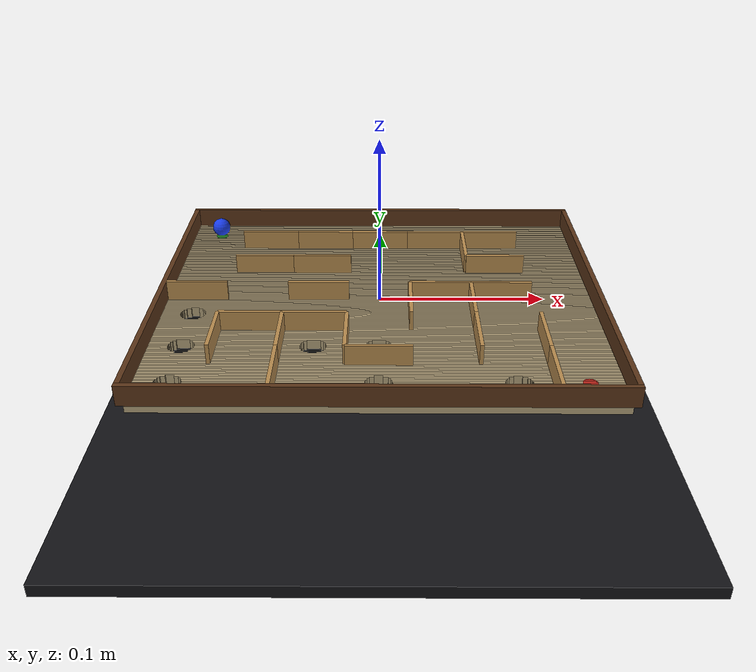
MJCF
<mujoco model="cyberrunner_custom_maze">
  <compiler angle="radian" inertiafromgeom="auto"/>
  <option timestep="0.001" gravity="0 0 -9.81" integrator="implicitfast" solver="Newton" iterations="12" tolerance="1e-9"/>
  <size nconmax="4000" njmax="12000"/>
  <visual>
    <global offwidth="900" offheight="800"/>
    <quality shadowsize="2048"/>
    <map znear="0.01" zfar="3"/>
  </visual>
  <default>
    <default class="floor">
      <geom friction="0.30 0.015 0.002" solref="0.004 1" solimp="0.95 0.99 0.001" density="650"/>
    </default>
    <default class="wall">
      <geom friction="0.35 0.02 0.003" solref="0.003 1" solimp="0.95 0.99 0.001" density="700"/>
    </default>
  </default>
  <worldbody>
    <light name="key" pos="0 -0.15 0.55" dir="0 0 -1" diffuse="0.9 0.9 0.9"/>
    <light name="fill" pos="-0.25 0.2 0.35" dir="0.4 -0.3 -1" diffuse="0.45 0.45 0.45"/>
    <camera name="top" pos="0 0 0.43" quat="1 0 0 0" mode="fixed" fovy="37"/>
    <geom name="catch_tray" type="box" pos="0 0 -0.085" size="0.18 0.16 0.004" rgba="0.08 0.08 0.09 1" friction="0.5 0.02 0.003"/>
    <body name="tilt_x_frame" pos="0 0 0">
      <inertial pos="0 0 0" mass="0.02" diaginertia="0.0001 0.0001 0.0001"/>
      <joint name="tilt_x" type="hinge" axis="1 0 0" range="-0.174532925 0.174532925" damping="0.8" armature="0.01"/>
      <body name="board" pos="0 0 0">
        <joint name="tilt_y" type="hinge" axis="0 1 0" range="-0.174532925 0.174532925" damping="0.8" armature="0.01"/>
        <geom name="floor_0" type="box" pos="0 -0.113751634 -0.003" size="0.1295 0.000748366013 0.003" rgba="0.70 0.63 0.48 1" class="floor"/><geom name="floor_1" type="box" pos="0 -0.112254902 -0.003" size="0.1295 0.000748366013 0.003" rgba="0.70 0.63 0.48 1" class="floor"/><geom name="floor_2" type="box" pos="0 -0.11075817 -0.003" size="0.1295 0.000748366013 0.003" rgba="0.70 0.63 0.48 1" class="floor"/><geom name="floor_3" type="box" pos="0 -0.109261438 -0.003" size="0.1295 0.000748366013 0.003" rgba="0.70 0.63 0.48 1" class="floor"/><geom name="floor_4" type="box" pos="0 -0.107764706 -0.003" size="0.1295 0.000748366013 0.003" rgba="0.70 0.63 0.48 1" class="floor"/><geom name="floor_5" type="box" pos="0 -0.106267974 -0.003" size="0.1295 0.000748366013 0.003" rgba="0.70 0.63 0.48 1" class="floor"/><geom name="floor_6" type="box" pos="0 -0.104771242 -0.003" size="0.1295 0.000748366013 0.003" rgba="0.70 0.63 0.48 1" class="floor"/><geom name="floor_7" type="box" pos="0 -0.10327451 -0.003" size="0.1295 0.000748366013 0.003" rgba="0.70 0.63 0.48 1" class="floor"/><geom name="floor_8" type="box" pos="-0.122236597 -0.101777778 -0.003" size="0.00726340332 0.000748366013 0.003" rgba="0.70 0.63 0.48 1" class="floor"/><geom name="floor_9" type="box" pos="-0.0555 -0.101777778 -0.003" size="0.0515268066 0.000748366013 0.003" rgba="0.70 0.63 0.48 1" class="floor"/><geom name="floor_10" type="box" pos="0.037 -0.101777778 -0.003" size="0.0330268066 0.000748366013 0.003" rgba="0.70 0.63 0.48 1" class="floor"/><geom name="floor_11" type="box" pos="0.103736597 -0.101777778 -0.003" size="0.0257634033 0.000748366013 0.003" rgba="0.70 0.63 0.48 1" class="floor"/><geom name="floor_12" type="box" pos="-0.123104287 -0.100281046 -0.003" size="0.00639571304 0.000748366013 0.003" rgba="0.70 0.63 0.48 1" class="floor"/><geom name="floor_13" type="box" pos="-0.0555 -0.100281046 -0.003" size="0.0497914261 0.000748366013 0.003" rgba="0.70 0.63 0.48 1" class="floor"/><geom name="floor_14" type="box" pos="0.037 -0.100281046 -0.003" size="0.0312914261 0.000748366013 0.003" rgba="0.70 0.63 0.48 1" class="floor"/><geom name="floor_15" type="box" pos="0.104604287 -0.100281046 -0.003" size="0.024895713 0.000748366013 0.003" rgba="0.70 0.63 0.48 1" class="floor"/><geom name="floor_16" type="box" pos="-0.123600707 -0.0987843137 -0.003" size="0.00589929286 0.000748366013 0.003" rgba="0.70 0.63 0.48 1" class="floor"/><geom name="floor_17" type="box" pos="-0.0555 -0.0987843137 -0.003" size="0.0487985857 0.000748366013 0.003" rgba="0.70 0.63 0.48 1" class="floor"/><geom name="floor_18" type="box" pos="0.037 -0.0987843137 -0.003" size="0.0302985857 0.000748366013 0.003" rgba="0.70 0.63 0.48 1" class="floor"/><geom name="floor_19" type="box" pos="0.105100707 -0.0987843137 -0.003" size="0.0243992929 0.000748366013 0.003" rgba="0.70 0.63 0.48 1" class="floor"/><geom name="floor_20" type="box" pos="-0.123881449 -0.0972875817 -0.003" size="0.00561855136 0.000748366013 0.003" rgba="0.70 0.63 0.48 1" class="floor"/><geom name="floor_21" type="box" pos="-0.0555 -0.0972875817 -0.003" size="0.0482371027 0.000748366013 0.003" rgba="0.70 0.63 0.48 1" class="floor"/><geom name="floor_22" type="box" pos="0.037 -0.0972875817 -0.003" size="0.0297371027 0.000748366013 0.003" rgba="0.70 0.63 0.48 1" class="floor"/><geom name="floor_23" type="box" pos="0.105381449 -0.0972875817 -0.003" size="0.0241185514 0.000748366013 0.003" rgba="0.70 0.63 0.48 1" class="floor"/><geom name="floor_24" type="box" pos="-0.12399533 -0.0957908497 -0.003" size="0.00550467001 0.000748366013 0.003" rgba="0.70 0.63 0.48 1" class="floor"/><geom name="floor_25" type="box" pos="-0.0555 -0.0957908497 -0.003" size="0.04800934 0.000748366013 0.003" rgba="0.70 0.63 0.48 1" class="floor"/><geom name="floor_26" type="box" pos="0.037 -0.0957908497 -0.003" size="0.02950934 0.000748366013 0.003" rgba="0.70 0.63 0.48 1" class="floor"/><geom name="floor_27" type="box" pos="0.10549533 -0.0957908497 -0.003" size="0.02400467 0.000748366013 0.003" rgba="0.70 0.63 0.48 1" class="floor"/><geom name="floor_28" type="box" pos="-0.123957758 -0.0942941176 -0.003" size="0.00554224179 0.000748366013 0.003" rgba="0.70 0.63 0.48 1" class="floor"/><geom name="floor_29" type="box" pos="-0.0555 -0.0942941176 -0.003" size="0.0480844836 0.000748366013 0.003" rgba="0.70 0.63 0.48 1" class="floor"/><geom name="floor_30" type="box" pos="0.037 -0.0942941176 -0.003" size="0.0295844836 0.000748366013 0.003" rgba="0.70 0.63 0.48 1" class="floor"/><geom name="floor_31" type="box" pos="0.105457758 -0.0942941176 -0.003" size="0.0240422418 0.000748366013 0.003" rgba="0.70 0.63 0.48 1" class="floor"/><geom name="floor_32" type="box" pos="-0.123763878 -0.0927973856 -0.003" size="0.00573612156 0.000748366013 0.003" rgba="0.70 0.63 0.48 1" class="floor"/><geom name="floor_33" type="box" pos="-0.0555 -0.0927973856 -0.003" size="0.0484722431 0.000748366013 0.003" rgba="0.70 0.63 0.48 1" class="floor"/><geom name="floor_34" type="box" pos="0.037 -0.0927973856 -0.003" size="0.0299722431 0.000748366013 0.003" rgba="0.70 0.63 0.48 1" class="floor"/><geom name="floor_35" type="box" pos="0.105263878 -0.0927973856 -0.003" size="0.0242361216 0.000748366013 0.003" rgba="0.70 0.63 0.48 1" class="floor"/><geom name="floor_36" type="box" pos="-0.123384822 -0.0913006536 -0.003" size="0.00611517798 0.000748366013 0.003" rgba="0.70 0.63 0.48 1" class="floor"/><geom name="floor_37" type="box" pos="-0.0555 -0.0913006536 -0.003" size="0.049230356 0.000748366013 0.003" rgba="0.70 0.63 0.48 1" class="floor"/><geom name="floor_38" type="box" pos="0.037 -0.0913006536 -0.003" size="0.030730356 0.000748366013 0.003" rgba="0.70 0.63 0.48 1" class="floor"/><geom name="floor_39" type="box" pos="0.104884822 -0.0913006536 -0.003" size="0.024615178 0.000748366013 0.003" rgba="0.70 0.63 0.48 1" class="floor"/><geom name="floor_40" type="box" pos="-0.122737322 -0.0898039216 -0.003" size="0.00676267752 0.000748366013 0.003" rgba="0.70 0.63 0.48 1" class="floor"/><geom name="floor_41" type="box" pos="-0.0555 -0.0898039216 -0.003" size="0.050525355 0.000748366013 0.003" rgba="0.70 0.63 0.48 1" class="floor"/><geom name="floor_42" type="box" pos="0.037 -0.0898039216 -0.003" size="0.032025355 0.000748366013 0.003" rgba="0.70 0.63 0.48 1" class="floor"/><geom name="floor_43" type="box" pos="0.104237322 -0.0898039216 -0.003" size="0.0252626775 0.000748366013 0.003" rgba="0.70 0.63 0.48 1" class="floor"/><geom name="floor_44" type="box" pos="-0.121444292 -0.0883071895 -0.003" size="0.00805570784 0.000748366013 0.003" rgba="0.70 0.63 0.48 1" class="floor"/><geom name="floor_45" type="box" pos="-0.0555 -0.0883071895 -0.003" size="0.0531114157 0.000748366013 0.003" rgba="0.70 0.63 0.48 1" class="floor"/><geom name="floor_46" type="box" pos="0.037 -0.0883071895 -0.003" size="0.0346114157 0.000748366013 0.003" rgba="0.70 0.63 0.48 1" class="floor"/><geom name="floor_47" type="box" pos="0.102944292 -0.0883071895 -0.003" size="0.0265557078 0.000748366013 0.003" rgba="0.70 0.63 0.48 1" class="floor"/><geom name="floor_48" type="box" pos="0 -0.0868104575 -0.003" size="0.1295 0.000748366013 0.003" rgba="0.70 0.63 0.48 1" class="floor"/><geom name="floor_49" type="box" pos="0 -0.0853137255 -0.003" size="0.1295 0.000748366013 0.003" rgba="0.70 0.63 0.48 1" class="floor"/><geom name="floor_50" type="box" pos="0 -0.0838169935 -0.003" size="0.1295 0.000748366013 0.003" rgba="0.70 0.63 0.48 1" class="floor"/><geom name="floor_51" type="box" pos="0 -0.0823202614 -0.003" size="0.1295 0.000748366013 0.003" rgba="0.70 0.63 0.48 1" class="floor"/><geom name="floor_52" type="box" pos="0 -0.0808235294 -0.003" size="0.1295 0.000748366013 0.003" rgba="0.70 0.63 0.48 1" class="floor"/><geom name="floor_53" type="box" pos="0 -0.0793267974 -0.003" size="0.1295 0.000748366013 0.003" rgba="0.70 0.63 0.48 1" class="floor"/><geom name="floor_54" type="box" pos="0 -0.0778300654 -0.003" size="0.1295 0.000748366013 0.003" rgba="0.70 0.63 0.48 1" class="floor"/><geom name="floor_55" type="box" pos="0 -0.0763333333 -0.003" size="0.1295 0.000748366013 0.003" rgba="0.70 0.63 0.48 1" class="floor"/><geom name="floor_56" type="box" pos="0 -0.0748366013 -0.003" size="0.1295 0.000748366013 0.003" rgba="0.70 0.63 0.48 1" class="floor"/><geom name="floor_57" type="box" pos="0 -0.0733398693 -0.003" size="0.1295 0.000748366013 0.003" rgba="0.70 0.63 0.48 1" class="floor"/><geom name="floor_58" type="box" pos="0 -0.0718431373 -0.003" size="0.1295 0.000748366013 0.003" rgba="0.70 0.63 0.48 1" class="floor"/><geom name="floor_59" type="box" pos="0 -0.0703464052 -0.003" size="0.1295 0.000748366013 0.003" rgba="0.70 0.63 0.48 1" class="floor"/><geom name="floor_60" type="box" pos="0 -0.0688496732 -0.003" size="0.1295 0.000748366013 0.003" rgba="0.70 0.63 0.48 1" class="floor"/><geom name="floor_61" type="box" pos="0 -0.0673529412 -0.003" size="0.1295 0.000748366013 0.003" rgba="0.70 0.63 0.48 1" class="floor"/><geom name="floor_62" type="box" pos="0 -0.0658562092 -0.003" size="0.1295 0.000748366013 0.003" rgba="0.70 0.63 0.48 1" class="floor"/><geom name="floor_63" type="box" pos="-0.121444292 -0.0643594771 -0.003" size="0.00805570784 0.000748366013 0.003" rgba="0.70 0.63 0.48 1" class="floor"/><geom name="floor_64" type="box" pos="-0.074 -0.0643594771 -0.003" size="0.0346114157 0.000748366013 0.003" rgba="0.70 0.63 0.48 1" class="floor"/><geom name="floor_65" type="box" pos="-0.0185 -0.0643594771 -0.003" size="0.0161114157 0.000748366013 0.003" rgba="0.70 0.63 0.48 1" class="floor"/><geom name="floor_66" type="box" pos="0.0659442922 -0.0643594771 -0.003" size="0.0635557078 0.000748366013 0.003" rgba="0.70 0.63 0.48 1" class="floor"/><geom name="floor_67" type="box" pos="-0.122737322 -0.0628627451 -0.003" size="0.00676267752 0.000748366013 0.003" rgba="0.70 0.63 0.48 1" class="floor"/><geom name="floor_68" type="box" pos="-0.074 -0.0628627451 -0.003" size="0.032025355 0.000748366013 0.003" rgba="0.70 0.63 0.48 1" class="floor"/><geom name="floor_69" type="box" pos="-0.0185 -0.0628627451 -0.003" size="0.013525355 0.000748366013 0.003" rgba="0.70 0.63 0.48 1" class="floor"/><geom name="floor_70" type="box" pos="0.0672373225 -0.0628627451 -0.003" size="0.0622626775 0.000748366013 0.003" rgba="0.70 0.63 0.48 1" class="floor"/><geom name="floor_71" type="box" pos="-0.123384822 -0.0613660131 -0.003" size="0.00611517798 0.000748366013 0.003" rgba="0.70 0.63 0.48 1" class="floor"/><geom name="floor_72" type="box" pos="-0.074 -0.0613660131 -0.003" size="0.030730356 0.000748366013 0.003" rgba="0.70 0.63 0.48 1" class="floor"/><geom name="floor_73" type="box" pos="-0.0185 -0.0613660131 -0.003" size="0.012230356 0.000748366013 0.003" rgba="0.70 0.63 0.48 1" class="floor"/><geom name="floor_74" type="box" pos="0.067884822 -0.0613660131 -0.003" size="0.061615178 0.000748366013 0.003" rgba="0.70 0.63 0.48 1" class="floor"/><geom name="floor_75" type="box" pos="-0.123763878 -0.059869281 -0.003" size="0.00573612156 0.000748366013 0.003" rgba="0.70 0.63 0.48 1" class="floor"/><geom name="floor_76" type="box" pos="-0.074 -0.059869281 -0.003" size="0.0299722431 0.000748366013 0.003" rgba="0.70 0.63 0.48 1" class="floor"/><geom name="floor_77" type="box" pos="-0.0185 -0.059869281 -0.003" size="0.0114722431 0.000748366013 0.003" rgba="0.70 0.63 0.48 1" class="floor"/><geom name="floor_78" type="box" pos="0.0682638784 -0.059869281 -0.003" size="0.0612361216 0.000748366013 0.003" rgba="0.70 0.63 0.48 1" class="floor"/><geom name="floor_79" type="box" pos="-0.123957758 -0.058372549 -0.003" size="0.00554224179 0.000748366013 0.003" rgba="0.70 0.63 0.48 1" class="floor"/><geom name="floor_80" type="box" pos="-0.074 -0.058372549 -0.003" size="0.0295844836 0.000748366013 0.003" rgba="0.70 0.63 0.48 1" class="floor"/><geom name="floor_81" type="box" pos="-0.0185 -0.058372549 -0.003" size="0.0110844836 0.000748366013 0.003" rgba="0.70 0.63 0.48 1" class="floor"/><geom name="floor_82" type="box" pos="0.0684577582 -0.058372549 -0.003" size="0.0610422418 0.000748366013 0.003" rgba="0.70 0.63 0.48 1" class="floor"/><geom name="floor_83" type="box" pos="-0.12399533 -0.056875817 -0.003" size="0.00550467001 0.000748366013 0.003" rgba="0.70 0.63 0.48 1" class="floor"/><geom name="floor_84" type="box" pos="-0.074 -0.056875817 -0.003" size="0.02950934 0.000748366013 0.003" rgba="0.70 0.63 0.48 1" class="floor"/><geom name="floor_85" type="box" pos="-0.0185 -0.056875817 -0.003" size="0.01100934 0.000748366013 0.003" rgba="0.70 0.63 0.48 1" class="floor"/><geom name="floor_86" type="box" pos="0.06849533 -0.056875817 -0.003" size="0.06100467 0.000748366013 0.003" rgba="0.70 0.63 0.48 1" class="floor"/><geom name="floor_87" type="box" pos="-0.123881449 -0.055379085 -0.003" size="0.00561855136 0.000748366013 0.003" rgba="0.70 0.63 0.48 1" class="floor"/><geom name="floor_88" type="box" pos="-0.074 -0.055379085 -0.003" size="0.0297371027 0.000748366013 0.003" rgba="0.70 0.63 0.48 1" class="floor"/><geom name="floor_89" type="box" pos="-0.0185 -0.055379085 -0.003" size="0.0112371027 0.000748366013 0.003" rgba="0.70 0.63 0.48 1" class="floor"/><geom name="floor_90" type="box" pos="0.0683814486 -0.055379085 -0.003" size="0.0611185514 0.000748366013 0.003" rgba="0.70 0.63 0.48 1" class="floor"/><geom name="floor_91" type="box" pos="-0.123600707 -0.0538823529 -0.003" size="0.00589929286 0.000748366013 0.003" rgba="0.70 0.63 0.48 1" class="floor"/><geom name="floor_92" type="box" pos="-0.074 -0.0538823529 -0.003" size="0.0302985857 0.000748366013 0.003" rgba="0.70 0.63 0.48 1" class="floor"/><geom name="floor_93" type="box" pos="-0.0185 -0.0538823529 -0.003" size="0.0117985857 0.000748366013 0.003" rgba="0.70 0.63 0.48 1" class="floor"/><geom name="floor_94" type="box" pos="0.0681007071 -0.0538823529 -0.003" size="0.0613992929 0.000748366013 0.003" rgba="0.70 0.63 0.48 1" class="floor"/><geom name="floor_95" type="box" pos="-0.123104287 -0.0523856209 -0.003" size="0.00639571304 0.000748366013 0.003" rgba="0.70 0.63 0.48 1" class="floor"/><geom name="floor_96" type="box" pos="-0.074 -0.0523856209 -0.003" size="0.0312914261 0.000748366013 0.003" rgba="0.70 0.63 0.48 1" class="floor"/><geom name="floor_97" type="box" pos="-0.0185 -0.0523856209 -0.003" size="0.0127914261 0.000748366013 0.003" rgba="0.70 0.63 0.48 1" class="floor"/><geom name="floor_98" type="box" pos="0.067604287 -0.0523856209 -0.003" size="0.061895713 0.000748366013 0.003" rgba="0.70 0.63 0.48 1" class="floor"/><geom name="floor_99" type="box" pos="-0.122236597 -0.0508888889 -0.003" size="0.00726340332 0.000748366013 0.003" rgba="0.70 0.63 0.48 1" class="floor"/><geom name="floor_100" type="box" pos="-0.074 -0.0508888889 -0.003" size="0.0330268066 0.000748366013 0.003" rgba="0.70 0.63 0.48 1" class="floor"/><geom name="floor_101" type="box" pos="-0.0185 -0.0508888889 -0.003" size="0.0145268066 0.000748366013 0.003" rgba="0.70 0.63 0.48 1" class="floor"/><geom name="floor_102" type="box" pos="0.0667365967 -0.0508888889 -0.003" size="0.0627634033 0.000748366013 0.003" rgba="0.70 0.63 0.48 1" class="floor"/><geom name="floor_103" type="box" pos="0 -0.0493921569 -0.003" size="0.1295 0.000748366013 0.003" rgba="0.70 0.63 0.48 1" class="floor"/><geom name="floor_104" type="box" pos="0 -0.0478954248 -0.003" size="0.1295 0.000748366013 0.003" rgba="0.70 0.63 0.48 1" class="floor"/><geom name="floor_105" type="box" pos="0 -0.0463986928 -0.003" size="0.1295 0.000748366013 0.003" rgba="0.70 0.63 0.48 1" class="floor"/><geom name="floor_106" type="box" pos="0 -0.0449019608 -0.003" size="0.1295 0.000748366013 0.003" rgba="0.70 0.63 0.48 1" class="floor"/><geom name="floor_107" type="box" pos="0 -0.0434052288 -0.003" size="0.1295 0.000748366013 0.003" rgba="0.70 0.63 0.48 1" class="floor"/><geom name="floor_108" type="box" pos="0 -0.0419084967 -0.003" size="0.1295 0.000748366013 0.003" rgba="0.70 0.63 0.48 1" class="floor"/><geom name="floor_109" type="box" pos="0 -0.0404117647 -0.003" size="0.1295 0.000748366013 0.003" rgba="0.70 0.63 0.48 1" class="floor"/><geom name="floor_110" type="box" pos="0 -0.0389150327 -0.003" size="0.1295 0.000748366013 0.003" rgba="0.70 0.63 0.48 1" class="floor"/><geom name="floor_111" type="box" pos="0 -0.0374183007 -0.003" size="0.1295 0.000748366013 0.003" rgba="0.70 0.63 0.48 1" class="floor"/><geom name="floor_112" type="box" pos="0 -0.0359215686 -0.003" size="0.1295 0.000748366013 0.003" rgba="0.70 0.63 0.48 1" class="floor"/><geom name="floor_113" type="box" pos="0 -0.0344248366 -0.003" size="0.1295 0.000748366013 0.003" rgba="0.70 0.63 0.48 1" class="floor"/><geom name="floor_114" type="box" pos="0 -0.0329281046 -0.003" size="0.1295 0.000748366013 0.003" rgba="0.70 0.63 0.48 1" class="floor"/><geom name="floor_115" type="box" pos="0 -0.0314313725 -0.003" size="0.1295 0.000748366013 0.003" rgba="0.70 0.63 0.48 1" class="floor"/><geom name="floor_116" type="box" pos="0 -0.0299346405 -0.003" size="0.1295 0.000748366013 0.003" rgba="0.70 0.63 0.48 1" class="floor"/><geom name="floor_117" type="box" pos="0 -0.0284379085 -0.003" size="0.1295 0.000748366013 0.003" rgba="0.70 0.63 0.48 1" class="floor"/><geom name="floor_118" type="box" pos="0 -0.0269411765 -0.003" size="0.1295 0.000748366013 0.003" rgba="0.70 0.63 0.48 1" class="floor"/><geom name="floor_119" type="box" pos="-0.122236597 -0.0254444444 -0.003" size="0.00726340332 0.000748366013 0.003" rgba="0.70 0.63 0.48 1" class="floor"/><geom name="floor_120" type="box" pos="0.0112365967 -0.0254444444 -0.003" size="0.118263403 0.000748366013 0.003" rgba="0.70 0.63 0.48 1" class="floor"/><geom name="floor_121" type="box" pos="-0.123104287 -0.0239477124 -0.003" size="0.00639571304 0.000748366013 0.003" rgba="0.70 0.63 0.48 1" class="floor"/><geom name="floor_122" type="box" pos="0.012104287 -0.0239477124 -0.003" size="0.117395713 0.000748366013 0.003" rgba="0.70 0.63 0.48 1" class="floor"/><geom name="floor_123" type="box" pos="-0.123600707 -0.0224509804 -0.003" size="0.00589929286 0.000748366013 0.003" rgba="0.70 0.63 0.48 1" class="floor"/><geom name="floor_124" type="box" pos="0.0126007071 -0.0224509804 -0.003" size="0.116899293 0.000748366013 0.003" rgba="0.70 0.63 0.48 1" class="floor"/><geom name="floor_125" type="box" pos="-0.123881449 -0.0209542484 -0.003" size="0.00561855136 0.000748366013 0.003" rgba="0.70 0.63 0.48 1" class="floor"/><geom name="floor_126" type="box" pos="0.0128814486 -0.0209542484 -0.003" size="0.116618551 0.000748366013 0.003" rgba="0.70 0.63 0.48 1" class="floor"/><geom name="floor_127" type="box" pos="-0.12399533 -0.0194575163 -0.003" size="0.00550467001 0.000748366013 0.003" rgba="0.70 0.63 0.48 1" class="floor"/><geom name="floor_128" type="box" pos="0.01299533 -0.0194575163 -0.003" size="0.11650467 0.000748366013 0.003" rgba="0.70 0.63 0.48 1" class="floor"/><geom name="floor_129" type="box" pos="-0.123957758 -0.0179607843 -0.003" size="0.00554224179 0.000748366013 0.003" rgba="0.70 0.63 0.48 1" class="floor"/><geom name="floor_130" type="box" pos="0.0129577582 -0.0179607843 -0.003" size="0.116542242 0.000748366013 0.003" rgba="0.70 0.63 0.48 1" class="floor"/><geom name="floor_131" type="box" pos="-0.123763878 -0.0164640523 -0.003" size="0.00573612156 0.000748366013 0.003" rgba="0.70 0.63 0.48 1" class="floor"/><geom name="floor_132" type="box" pos="0.0127638784 -0.0164640523 -0.003" size="0.116736122 0.000748366013 0.003" rgba="0.70 0.63 0.48 1" class="floor"/><geom name="floor_133" type="box" pos="-0.123384822 -0.0149673203 -0.003" size="0.00611517798 0.000748366013 0.003" rgba="0.70 0.63 0.48 1" class="floor"/><geom name="floor_134" type="box" pos="0.012384822 -0.0149673203 -0.003" size="0.117115178 0.000748366013 0.003" rgba="0.70 0.63 0.48 1" class="floor"/><geom name="floor_135" type="box" pos="-0.122737322 -0.0134705882 -0.003" size="0.00676267752 0.000748366013 0.003" rgba="0.70 0.63 0.48 1" class="floor"/><geom name="floor_136" type="box" pos="0.0117373225 -0.0134705882 -0.003" size="0.117762678 0.000748366013 0.003" rgba="0.70 0.63 0.48 1" class="floor"/><geom name="floor_137" type="box" pos="-0.121444292 -0.0119738562 -0.003" size="0.00805570784 0.000748366013 0.003" rgba="0.70 0.63 0.48 1" class="floor"/><geom name="floor_138" type="box" pos="0.0104442922 -0.0119738562 -0.003" size="0.119055708 0.000748366013 0.003" rgba="0.70 0.63 0.48 1" class="floor"/><geom name="floor_139" type="box" pos="0 -0.0104771242 -0.003" size="0.1295 0.000748366013 0.003" rgba="0.70 0.63 0.48 1" class="floor"/><geom name="floor_140" type="box" pos="0 -0.00898039216 -0.003" size="0.1295 0.000748366013 0.003" rgba="0.70 0.63 0.48 1" class="floor"/><geom name="floor_141" type="box" pos="0 -0.00748366013 -0.003" size="0.1295 0.000748366013 0.003" rgba="0.70 0.63 0.48 1" class="floor"/><geom name="floor_142" type="box" pos="0 -0.0059869281 -0.003" size="0.1295 0.000748366013 0.003" rgba="0.70 0.63 0.48 1" class="floor"/><geom name="floor_143" type="box" pos="0 -0.00449019608 -0.003" size="0.1295 0.000748366013 0.003" rgba="0.70 0.63 0.48 1" class="floor"/><geom name="floor_144" type="box" pos="0 -0.00299346405 -0.003" size="0.1295 0.000748366013 0.003" rgba="0.70 0.63 0.48 1" class="floor"/><geom name="floor_145" type="box" pos="0 -0.00149673203 -0.003" size="0.1295 0.000748366013 0.003" rgba="0.70 0.63 0.48 1" class="floor"/><geom name="floor_146" type="box" pos="0 -1.38777878e-17 -0.003" size="0.1295 0.000748366013 0.003" rgba="0.70 0.63 0.48 1" class="floor"/><geom name="floor_147" type="box" pos="0 0.00149673203 -0.003" size="0.1295 0.000748366013 0.003" rgba="0.70 0.63 0.48 1" class="floor"/><geom name="floor_148" type="box" pos="0 0.00299346405 -0.003" size="0.1295 0.000748366013 0.003" rgba="0.70 0.63 0.48 1" class="floor"/><geom name="floor_149" type="box" pos="0 0.00449019608 -0.003" size="0.1295 0.000748366013 0.003" rgba="0.70 0.63 0.48 1" class="floor"/><geom name="floor_150" type="box" pos="0 0.0059869281 -0.003" size="0.1295 0.000748366013 0.003" rgba="0.70 0.63 0.48 1" class="floor"/><geom name="floor_151" type="box" pos="0 0.00748366013 -0.003" size="0.1295 0.000748366013 0.003" rgba="0.70 0.63 0.48 1" class="floor"/><geom name="floor_152" type="box" pos="0 0.00898039216 -0.003" size="0.1295 0.000748366013 0.003" rgba="0.70 0.63 0.48 1" class="floor"/><geom name="floor_153" type="box" pos="0 0.0104771242 -0.003" size="0.1295 0.000748366013 0.003" rgba="0.70 0.63 0.48 1" class="floor"/><geom name="floor_154" type="box" pos="-0.0289442922 0.0119738562 -0.003" size="0.100555708 0.000748366013 0.003" rgba="0.70 0.63 0.48 1" class="floor"/><geom name="floor_155" type="box" pos="0.102944292 0.0119738562 -0.003" size="0.0265557078 0.000748366013 0.003" rgba="0.70 0.63 0.48 1" class="floor"/><geom name="floor_156" type="box" pos="-0.0302373225 0.0134705882 -0.003" size="0.0992626775 0.000748366013 0.003" rgba="0.70 0.63 0.48 1" class="floor"/><geom name="floor_157" type="box" pos="0.104237322 0.0134705882 -0.003" size="0.0252626775 0.000748366013 0.003" rgba="0.70 0.63 0.48 1" class="floor"/><geom name="floor_158" type="box" pos="-0.030884822 0.0149673203 -0.003" size="0.098615178 0.000748366013 0.003" rgba="0.70 0.63 0.48 1" class="floor"/><geom name="floor_159" type="box" pos="0.104884822 0.0149673203 -0.003" size="0.024615178 0.000748366013 0.003" rgba="0.70 0.63 0.48 1" class="floor"/><geom name="floor_160" type="box" pos="-0.0312638784 0.0164640523 -0.003" size="0.0982361216 0.000748366013 0.003" rgba="0.70 0.63 0.48 1" class="floor"/><geom name="floor_161" type="box" pos="0.105263878 0.0164640523 -0.003" size="0.0242361216 0.000748366013 0.003" rgba="0.70 0.63 0.48 1" class="floor"/><geom name="floor_162" type="box" pos="-0.0314577582 0.0179607843 -0.003" size="0.0980422418 0.000748366013 0.003" rgba="0.70 0.63 0.48 1" class="floor"/><geom name="floor_163" type="box" pos="0.105457758 0.0179607843 -0.003" size="0.0240422418 0.000748366013 0.003" rgba="0.70 0.63 0.48 1" class="floor"/><geom name="floor_164" type="box" pos="-0.03149533 0.0194575163 -0.003" size="0.09800467 0.000748366013 0.003" rgba="0.70 0.63 0.48 1" class="floor"/><geom name="floor_165" type="box" pos="0.10549533 0.0194575163 -0.003" size="0.02400467 0.000748366013 0.003" rgba="0.70 0.63 0.48 1" class="floor"/><geom name="floor_166" type="box" pos="-0.0313814486 0.0209542484 -0.003" size="0.0981185514 0.000748366013 0.003" rgba="0.70 0.63 0.48 1" class="floor"/><geom name="floor_167" type="box" pos="0.105381449 0.0209542484 -0.003" size="0.0241185514 0.000748366013 0.003" rgba="0.70 0.63 0.48 1" class="floor"/><geom name="floor_168" type="box" pos="-0.0311007071 0.0224509804 -0.003" size="0.0983992929 0.000748366013 0.003" rgba="0.70 0.63 0.48 1" class="floor"/><geom name="floor_169" type="box" pos="0.105100707 0.0224509804 -0.003" size="0.0243992929 0.000748366013 0.003" rgba="0.70 0.63 0.48 1" class="floor"/><geom name="floor_170" type="box" pos="-0.030604287 0.0239477124 -0.003" size="0.098895713 0.000748366013 0.003" rgba="0.70 0.63 0.48 1" class="floor"/><geom name="floor_171" type="box" pos="0.104604287 0.0239477124 -0.003" size="0.024895713 0.000748366013 0.003" rgba="0.70 0.63 0.48 1" class="floor"/><geom name="floor_172" type="box" pos="-0.0297365967 0.0254444444 -0.003" size="0.0997634033 0.000748366013 0.003" rgba="0.70 0.63 0.48 1" class="floor"/><geom name="floor_173" type="box" pos="0.103736597 0.0254444444 -0.003" size="0.0257634033 0.000748366013 0.003" rgba="0.70 0.63 0.48 1" class="floor"/><geom name="floor_174" type="box" pos="0 0.0269411765 -0.003" size="0.1295 0.000748366013 0.003" rgba="0.70 0.63 0.48 1" class="floor"/><geom name="floor_175" type="box" pos="0 0.0284379085 -0.003" size="0.1295 0.000748366013 0.003" rgba="0.70 0.63 0.48 1" class="floor"/><geom name="floor_176" type="box" pos="0 0.0299346405 -0.003" size="0.1295 0.000748366013 0.003" rgba="0.70 0.63 0.48 1" class="floor"/><geom name="floor_177" type="box" pos="0 0.0314313725 -0.003" size="0.1295 0.000748366013 0.003" rgba="0.70 0.63 0.48 1" class="floor"/><geom name="floor_178" type="box" pos="0 0.0329281046 -0.003" size="0.1295 0.000748366013 0.003" rgba="0.70 0.63 0.48 1" class="floor"/><geom name="floor_179" type="box" pos="0 0.0344248366 -0.003" size="0.1295 0.000748366013 0.003" rgba="0.70 0.63 0.48 1" class="floor"/><geom name="floor_180" type="box" pos="0 0.0359215686 -0.003" size="0.1295 0.000748366013 0.003" rgba="0.70 0.63 0.48 1" class="floor"/><geom name="floor_181" type="box" pos="0 0.0374183007 -0.003" size="0.1295 0.000748366013 0.003" rgba="0.70 0.63 0.48 1" class="floor"/><geom name="floor_182" type="box" pos="0 0.0389150327 -0.003" size="0.1295 0.000748366013 0.003" rgba="0.70 0.63 0.48 1" class="floor"/><geom name="floor_183" type="box" pos="0 0.0404117647 -0.003" size="0.1295 0.000748366013 0.003" rgba="0.70 0.63 0.48 1" class="floor"/><geom name="floor_184" type="box" pos="0 0.0419084967 -0.003" size="0.1295 0.000748366013 0.003" rgba="0.70 0.63 0.48 1" class="floor"/><geom name="floor_185" type="box" pos="0 0.0434052288 -0.003" size="0.1295 0.000748366013 0.003" rgba="0.70 0.63 0.48 1" class="floor"/><geom name="floor_186" type="box" pos="0 0.0449019608 -0.003" size="0.1295 0.000748366013 0.003" rgba="0.70 0.63 0.48 1" class="floor"/><geom name="floor_187" type="box" pos="0 0.0463986928 -0.003" size="0.1295 0.000748366013 0.003" rgba="0.70 0.63 0.48 1" class="floor"/><geom name="floor_188" type="box" pos="0 0.0478954248 -0.003" size="0.1295 0.000748366013 0.003" rgba="0.70 0.63 0.48 1" class="floor"/><geom name="floor_189" type="box" pos="0 0.0493921569 -0.003" size="0.1295 0.000748366013 0.003" rgba="0.70 0.63 0.48 1" class="floor"/><geom name="floor_190" type="box" pos="-0.103736597 0.0508888889 -0.003" size="0.0257634033 0.000748366013 0.003" rgba="0.70 0.63 0.48 1" class="floor"/><geom name="floor_191" type="box" pos="0 0.0508888889 -0.003" size="0.0700268066 0.000748366013 0.003" rgba="0.70 0.63 0.48 1" class="floor"/><geom name="floor_192" type="box" pos="0.103736597 0.0508888889 -0.003" size="0.0257634033 0.000748366013 0.003" rgba="0.70 0.63 0.48 1" class="floor"/><geom name="floor_193" type="box" pos="-0.104604287 0.0523856209 -0.003" size="0.024895713 0.000748366013 0.003" rgba="0.70 0.63 0.48 1" class="floor"/><geom name="floor_194" type="box" pos="-2.77555756e-17 0.0523856209 -0.003" size="0.0682914261 0.000748366013 0.003" rgba="0.70 0.63 0.48 1" class="floor"/><geom name="floor_195" type="box" pos="0.104604287 0.0523856209 -0.003" size="0.024895713 0.000748366013 0.003" rgba="0.70 0.63 0.48 1" class="floor"/><geom name="floor_196" type="box" pos="-0.105100707 0.0538823529 -0.003" size="0.0243992929 0.000748366013 0.003" rgba="0.70 0.63 0.48 1" class="floor"/><geom name="floor_197" type="box" pos="0 0.0538823529 -0.003" size="0.0672985857 0.000748366013 0.003" rgba="0.70 0.63 0.48 1" class="floor"/><geom name="floor_198" type="box" pos="0.105100707 0.0538823529 -0.003" size="0.0243992929 0.000748366013 0.003" rgba="0.70 0.63 0.48 1" class="floor"/><geom name="floor_199" type="box" pos="-0.105381449 0.055379085 -0.003" size="0.0241185514 0.000748366013 0.003" rgba="0.70 0.63 0.48 1" class="floor"/><geom name="floor_200" type="box" pos="0 0.055379085 -0.003" size="0.0667371027 0.000748366013 0.003" rgba="0.70 0.63 0.48 1" class="floor"/><geom name="floor_201" type="box" pos="0.105381449 0.055379085 -0.003" size="0.0241185514 0.000748366013 0.003" rgba="0.70 0.63 0.48 1" class="floor"/><geom name="floor_202" type="box" pos="-0.10549533 0.056875817 -0.003" size="0.02400467 0.000748366013 0.003" rgba="0.70 0.63 0.48 1" class="floor"/><geom name="floor_203" type="box" pos="0 0.056875817 -0.003" size="0.06650934 0.000748366013 0.003" rgba="0.70 0.63 0.48 1" class="floor"/><geom name="floor_204" type="box" pos="0.10549533 0.056875817 -0.003" size="0.02400467 0.000748366013 0.003" rgba="0.70 0.63 0.48 1" class="floor"/><geom name="floor_205" type="box" pos="-0.105457758 0.058372549 -0.003" size="0.0240422418 0.000748366013 0.003" rgba="0.70 0.63 0.48 1" class="floor"/><geom name="floor_206" type="box" pos="-2.77555756e-17 0.058372549 -0.003" size="0.0665844836 0.000748366013 0.003" rgba="0.70 0.63 0.48 1" class="floor"/><geom name="floor_207" type="box" pos="0.105457758 0.058372549 -0.003" size="0.0240422418 0.000748366013 0.003" rgba="0.70 0.63 0.48 1" class="floor"/><geom name="floor_208" type="box" pos="-0.105263878 0.059869281 -0.003" size="0.0242361216 0.000748366013 0.003" rgba="0.70 0.63 0.48 1" class="floor"/><geom name="floor_209" type="box" pos="0 0.059869281 -0.003" size="0.0669722431 0.000748366013 0.003" rgba="0.70 0.63 0.48 1" class="floor"/><geom name="floor_210" type="box" pos="0.105263878 0.059869281 -0.003" size="0.0242361216 0.000748366013 0.003" rgba="0.70 0.63 0.48 1" class="floor"/><geom name="floor_211" type="box" pos="-0.104884822 0.0613660131 -0.003" size="0.024615178 0.000748366013 0.003" rgba="0.70 0.63 0.48 1" class="floor"/><geom name="floor_212" type="box" pos="-2.77555756e-17 0.0613660131 -0.003" size="0.067730356 0.000748366013 0.003" rgba="0.70 0.63 0.48 1" class="floor"/><geom name="floor_213" type="box" pos="0.104884822 0.0613660131 -0.003" size="0.024615178 0.000748366013 0.003" rgba="0.70 0.63 0.48 1" class="floor"/><geom name="floor_214" type="box" pos="-0.104237322 0.0628627451 -0.003" size="0.0252626775 0.000748366013 0.003" rgba="0.70 0.63 0.48 1" class="floor"/><geom name="floor_215" type="box" pos="-2.77555756e-17 0.0628627451 -0.003" size="0.069025355 0.000748366013 0.003" rgba="0.70 0.63 0.48 1" class="floor"/><geom name="floor_216" type="box" pos="0.104237322 0.0628627451 -0.003" size="0.0252626775 0.000748366013 0.003" rgba="0.70 0.63 0.48 1" class="floor"/><geom name="floor_217" type="box" pos="-0.102944292 0.0643594771 -0.003" size="0.0265557078 0.000748366013 0.003" rgba="0.70 0.63 0.48 1" class="floor"/><geom name="floor_218" type="box" pos="-2.77555756e-17 0.0643594771 -0.003" size="0.0716114157 0.000748366013 0.003" rgba="0.70 0.63 0.48 1" class="floor"/><geom name="floor_219" type="box" pos="0.102944292 0.0643594771 -0.003" size="0.0265557078 0.000748366013 0.003" rgba="0.70 0.63 0.48 1" class="floor"/><geom name="floor_220" type="box" pos="0 0.0658562092 -0.003" size="0.1295 0.000748366013 0.003" rgba="0.70 0.63 0.48 1" class="floor"/><geom name="floor_221" type="box" pos="0 0.0673529412 -0.003" size="0.1295 0.000748366013 0.003" rgba="0.70 0.63 0.48 1" class="floor"/><geom name="floor_222" type="box" pos="0 0.0688496732 -0.003" size="0.1295 0.000748366013 0.003" rgba="0.70 0.63 0.48 1" class="floor"/><geom name="floor_223" type="box" pos="0 0.0703464052 -0.003" size="0.1295 0.000748366013 0.003" rgba="0.70 0.63 0.48 1" class="floor"/><geom name="floor_224" type="box" pos="0 0.0718431373 -0.003" size="0.1295 0.000748366013 0.003" rgba="0.70 0.63 0.48 1" class="floor"/><geom name="floor_225" type="box" pos="0 0.0733398693 -0.003" size="0.1295 0.000748366013 0.003" rgba="0.70 0.63 0.48 1" class="floor"/><geom name="floor_226" type="box" pos="0 0.0748366013 -0.003" size="0.1295 0.000748366013 0.003" rgba="0.70 0.63 0.48 1" class="floor"/><geom name="floor_227" type="box" pos="0 0.0763333333 -0.003" size="0.1295 0.000748366013 0.003" rgba="0.70 0.63 0.48 1" class="floor"/><geom name="floor_228" type="box" pos="0 0.0778300654 -0.003" size="0.1295 0.000748366013 0.003" rgba="0.70 0.63 0.48 1" class="floor"/><geom name="floor_229" type="box" pos="0 0.0793267974 -0.003" size="0.1295 0.000748366013 0.003" rgba="0.70 0.63 0.48 1" class="floor"/><geom name="floor_230" type="box" pos="0 0.0808235294 -0.003" size="0.1295 0.000748366013 0.003" rgba="0.70 0.63 0.48 1" class="floor"/><geom name="floor_231" type="box" pos="0 0.0823202614 -0.003" size="0.1295 0.000748366013 0.003" rgba="0.70 0.63 0.48 1" class="floor"/><geom name="floor_232" type="box" pos="0 0.0838169935 -0.003" size="0.1295 0.000748366013 0.003" rgba="0.70 0.63 0.48 1" class="floor"/><geom name="floor_233" type="box" pos="0 0.0853137255 -0.003" size="0.1295 0.000748366013 0.003" rgba="0.70 0.63 0.48 1" class="floor"/><geom name="floor_234" type="box" pos="0 0.0868104575 -0.003" size="0.1295 0.000748366013 0.003" rgba="0.70 0.63 0.48 1" class="floor"/><geom name="floor_235" type="box" pos="0 0.0883071895 -0.003" size="0.1295 0.000748366013 0.003" rgba="0.70 0.63 0.48 1" class="floor"/><geom name="floor_236" type="box" pos="0 0.0898039216 -0.003" size="0.1295 0.000748366013 0.003" rgba="0.70 0.63 0.48 1" class="floor"/><geom name="floor_237" type="box" pos="0 0.0913006536 -0.003" size="0.1295 0.000748366013 0.003" rgba="0.70 0.63 0.48 1" class="floor"/><geom name="floor_238" type="box" pos="0 0.0927973856 -0.003" size="0.1295 0.000748366013 0.003" rgba="0.70 0.63 0.48 1" class="floor"/><geom name="floor_239" type="box" pos="0 0.0942941176 -0.003" size="0.1295 0.000748366013 0.003" rgba="0.70 0.63 0.48 1" class="floor"/><geom name="floor_240" type="box" pos="0 0.0957908497 -0.003" size="0.1295 0.000748366013 0.003" rgba="0.70 0.63 0.48 1" class="floor"/><geom name="floor_241" type="box" pos="0 0.0972875817 -0.003" size="0.1295 0.000748366013 0.003" rgba="0.70 0.63 0.48 1" class="floor"/><geom name="floor_242" type="box" pos="0 0.0987843137 -0.003" size="0.1295 0.000748366013 0.003" rgba="0.70 0.63 0.48 1" class="floor"/><geom name="floor_243" type="box" pos="0 0.100281046 -0.003" size="0.1295 0.000748366013 0.003" rgba="0.70 0.63 0.48 1" class="floor"/><geom name="floor_244" type="box" pos="0 0.101777778 -0.003" size="0.1295 0.000748366013 0.003" rgba="0.70 0.63 0.48 1" class="floor"/><geom name="floor_245" type="box" pos="0 0.10327451 -0.003" size="0.1295 0.000748366013 0.003" rgba="0.70 0.63 0.48 1" class="floor"/><geom name="floor_246" type="box" pos="0 0.104771242 -0.003" size="0.1295 0.000748366013 0.003" rgba="0.70 0.63 0.48 1" class="floor"/><geom name="floor_247" type="box" pos="0 0.106267974 -0.003" size="0.1295 0.000748366013 0.003" rgba="0.70 0.63 0.48 1" class="floor"/><geom name="floor_248" type="box" pos="0 0.107764706 -0.003" size="0.1295 0.000748366013 0.003" rgba="0.70 0.63 0.48 1" class="floor"/><geom name="floor_249" type="box" pos="0 0.109261438 -0.003" size="0.1295 0.000748366013 0.003" rgba="0.70 0.63 0.48 1" class="floor"/><geom name="floor_250" type="box" pos="0 0.11075817 -0.003" size="0.1295 0.000748366013 0.003" rgba="0.70 0.63 0.48 1" class="floor"/><geom name="floor_251" type="box" pos="0 0.112254902 -0.003" size="0.1295 0.000748366013 0.003" rgba="0.70 0.63 0.48 1" class="floor"/><geom name="floor_252" type="box" pos="0 0.113751634 -0.003" size="0.1295 0.000748366013 0.003" rgba="0.70 0.63 0.48 1" class="floor"/>
        <geom name="hole_marker_0" type="cylinder" pos="-0.037 -0.05725 -0.0065" size="0.0075 0.0005" rgba="0.035 0.035 0.035 1" contype="0" conaffinity="0" mass="0"/><geom name="hole_marker_1" type="cylinder" pos="-0.111 -0.0190833333 -0.0065" size="0.0075 0.0005" rgba="0.035 0.035 0.035 1" contype="0" conaffinity="0" mass="0"/><geom name="hole_marker_2" type="cylinder" pos="0 -0.05725 -0.0065" size="0.0075 0.0005" rgba="0.035 0.035 0.035 1" contype="0" conaffinity="0" mass="0"/><geom name="hole_marker_3" type="cylinder" pos="-0.111 -0.05725 -0.0065" size="0.0075 0.0005" rgba="0.035 0.035 0.035 1" contype="0" conaffinity="0" mass="0"/><geom name="hole_marker_4" type="cylinder" pos="0 -0.0954166667 -0.0065" size="0.0075 0.0005" rgba="0.035 0.035 0.035 1" contype="0" conaffinity="0" mass="0"/><geom name="hole_marker_5" type="cylinder" pos="0.074 -0.0954166667 -0.0065" size="0.0075 0.0005" rgba="0.035 0.035 0.035 1" contype="0" conaffinity="0" mass="0"/><geom name="hole_marker_6" type="cylinder" pos="0.074 0.0190833333 -0.0065" size="0.0075 0.0005" rgba="0.035 0.035 0.035 1" contype="0" conaffinity="0" mass="0"/><geom name="hole_marker_7" type="cylinder" pos="0.074 0.05725 -0.0065" size="0.0075 0.0005" rgba="0.035 0.035 0.035 1" contype="0" conaffinity="0" mass="0"/><geom name="hole_marker_8" type="cylinder" pos="-0.074 0.05725 -0.0065" size="0.0075 0.0005" rgba="0.035 0.035 0.035 1" contype="0" conaffinity="0" mass="0"/><geom name="hole_marker_9" type="cylinder" pos="-0.111 -0.0954166667 -0.0065" size="0.0075 0.0005" rgba="0.035 0.035 0.035 1" contype="0" conaffinity="0" mass="0"/>
        <geom name="wall_h_0" type="box" pos="-0.111 0 0.006" size="0.0185 0.0011 0.006" rgba="0.72 0.55 0.31 1" class="wall"/><geom name="wall_h_1" type="box" pos="-0.074 -0.0381666667 0.006" size="0.0185 0.0011 0.006" rgba="0.72 0.55 0.31 1" class="wall"/><geom name="wall_h_2" type="box" pos="-0.074 0.0381666667 0.006" size="0.0185 0.0011 0.006" rgba="0.72 0.55 0.31 1" class="wall"/><geom name="wall_h_3" type="box" pos="-0.074 0.0763333333 0.006" size="0.0185 0.0011 0.006" rgba="0.72 0.55 0.31 1" class="wall"/><geom name="wall_h_4" type="box" pos="-0.037 -0.0381666667 0.006" size="0.0185 0.0011 0.006" rgba="0.72 0.55 0.31 1" class="wall"/><geom name="wall_h_5" type="box" pos="-0.037 0 0.006" size="0.0185 0.0011 0.006" rgba="0.72 0.55 0.31 1" class="wall"/><geom name="wall_h_6" type="box" pos="-0.037 0.0381666667 0.006" size="0.0185 0.0011 0.006" rgba="0.72 0.55 0.31 1" class="wall"/><geom name="wall_h_7" type="box" pos="-0.037 0.0763333333 0.006" size="0.0185 0.0011 0.006" rgba="0.72 0.55 0.31 1" class="wall"/><geom name="wall_h_8" type="box" pos="0 -0.0763333333 0.006" size="0.0185 0.0011 0.006" rgba="0.72 0.55 0.31 1" class="wall"/><geom name="wall_h_9" type="box" pos="0 0.0763333333 0.006" size="0.0185 0.0011 0.006" rgba="0.72 0.55 0.31 1" class="wall"/><geom name="wall_h_10" type="box" pos="0.037 0 0.006" size="0.0185 0.0011 0.006" rgba="0.72 0.55 0.31 1" class="wall"/><geom name="wall_h_11" type="box" pos="0.037 0.0763333333 0.006" size="0.0185 0.0011 0.006" rgba="0.72 0.55 0.31 1" class="wall"/><geom name="wall_h_12" type="box" pos="0.074 0 0.006" size="0.0185 0.0011 0.006" rgba="0.72 0.55 0.31 1" class="wall"/><geom name="wall_h_13" type="box" pos="0.074 0.0381666667 0.006" size="0.0185 0.0011 0.006" rgba="0.72 0.55 0.31 1" class="wall"/><geom name="wall_h_14" type="box" pos="0.074 0.0763333333 0.006" size="0.0185 0.0011 0.006" rgba="0.72 0.55 0.31 1" class="wall"/><geom name="wall_v_15" type="box" pos="-0.0925 -0.05725 0.006" size="0.0190833333 0.0011 0.006" rgba="0.72 0.55 0.31 1" euler="0 0 1.57079633" class="wall"/><geom name="wall_v_16" type="box" pos="-0.0555 -0.0954166667 0.006" size="0.0190833333 0.0011 0.006" rgba="0.72 0.55 0.31 1" euler="0 0 1.57079633" class="wall"/><geom name="wall_v_17" type="box" pos="-0.0555 -0.05725 0.006" size="0.0190833333 0.0011 0.006" rgba="0.72 0.55 0.31 1" euler="0 0 1.57079633" class="wall"/><geom name="wall_v_18" type="box" pos="-0.0185 -0.05725 0.006" size="0.0190833333 0.0011 0.006" rgba="0.72 0.55 0.31 1" euler="0 0 1.57079633" class="wall"/><geom name="wall_v_19" type="box" pos="0.0185 -0.0190833333 0.006" size="0.0190833333 0.0011 0.006" rgba="0.72 0.55 0.31 1" euler="0 0 1.57079633" class="wall"/><geom name="wall_v_20" type="box" pos="0.0555 -0.05725 0.006" size="0.0190833333 0.0011 0.006" rgba="0.72 0.55 0.31 1" euler="0 0 1.57079633" class="wall"/><geom name="wall_v_21" type="box" pos="0.0555 -0.0190833333 0.006" size="0.0190833333 0.0011 0.006" rgba="0.72 0.55 0.31 1" euler="0 0 1.57079633" class="wall"/><geom name="wall_v_22" type="box" pos="0.0555 0.05725 0.006" size="0.0190833333 0.0011 0.006" rgba="0.72 0.55 0.31 1" euler="0 0 1.57079633" class="wall"/><geom name="wall_v_23" type="box" pos="0.0925 -0.0954166667 0.006" size="0.0190833333 0.0011 0.006" rgba="0.72 0.55 0.31 1" euler="0 0 1.57079633" class="wall"/><geom name="wall_v_24" type="box" pos="0.0925 -0.05725 0.006" size="0.0190833333 0.0011 0.006" rgba="0.72 0.55 0.31 1" euler="0 0 1.57079633" class="wall"/>
        <geom name="rim_bottom" type="box" pos="0 -0.116 0.006" size="0.1325 0.0015 0.006" rgba="0.36 0.21 0.10 1" class="wall"/><geom name="rim_top" type="box" pos="0 0.116 0.006" size="0.1325 0.0015 0.006" rgba="0.36 0.21 0.10 1" class="wall"/><geom name="rim_left" type="box" pos="-0.131 0 0.006" size="0.0015 0.1145 0.006" rgba="0.36 0.21 0.10 1" class="wall"/><geom name="rim_right" type="box" pos="0.131 0 0.006" size="0.0015 0.1145 0.006" rgba="0.36 0.21 0.10 1" class="wall"/>
        <site name="start" type="cylinder" pos="-0.111 0.0954166667 0.0002" size="0.004 0.0002" rgba="0.1 0.75 0.2 0.75"/>
        <site name="goal" type="cylinder" pos="0.111 -0.0954166667 0.00025" size="0.004 0.00025" rgba="0.9 0.1 0.08 0.8"/>
      </body>
    </body>
    <body name="ball" pos="-0.111 0.0954166667 0.007">
      <freejoint name="ball_free"/>
      <geom name="ball_geom" type="sphere" size="0.006" mass="0.011" rgba="0.10 0.24 0.92 1" friction="0.22 0.012 0.002" solref="0.0025 1" solimp="0.97 0.995 0.001"/>
    </body>
  </worldbody>
  <actuator>
    <position name="servo_x" joint="tilt_x" kp="90" kv="8" ctrlrange="-0.174532925 0.174532925" forcerange="-30 30"/>
    <position name="servo_y" joint="tilt_y" kp="90" kv="8" ctrlrange="-0.174532925 0.174532925" forcerange="-30 30"/>
  </actuator>
</mujoco>
